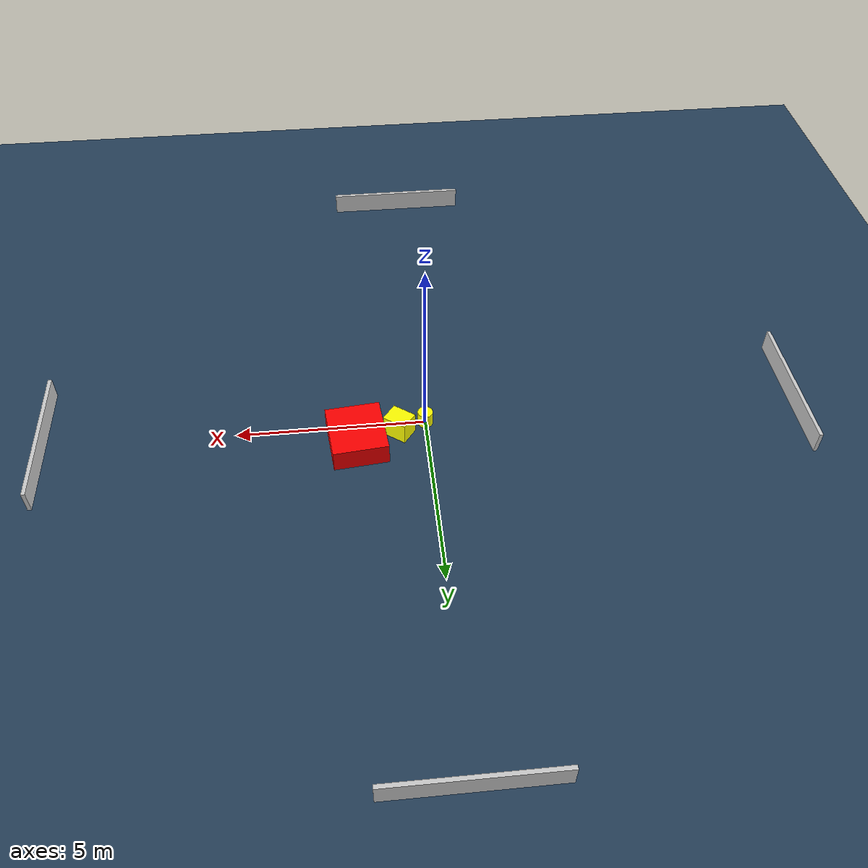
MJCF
<?xml version="1.0" ?>
<mujoco model="generated_environment">
  <option timestep="0.01" integrator="RK4" cone="elliptic"/>
  <default>
    <geom density="1"/>
  </default>
  <asset>
    <texture builtin="gradient" height="3072" name="skybox" rgb1="0.3 0.5 0.7" rgb2="0 0 0" type="skybox" width="512"/>
    <texture builtin="checker" height="300" name="groundplane" rgb1="0.2 0.3 0.4" rgb2="0.1 0.2 0.3" type="2d" width="300"/>
    <material name="groundplane" reflectance="0.2" texrepeat="5 5" texture="groundplane"/>
  </asset>
  <worldbody>
    <light dir="0 0 -1" directional="true" pos="0 0 1.5"/>
    <geom condim="3" friction="0.5 0.005 0.001" material="groundplane" name="floor" pos="0 0 0" size="0 0 0.05" type="plane"/>
    <body name="walls">
      <geom name="wall_1" condim="4" pos="-10.0 0.0 0.3" rgba="0.800000011920929 0.800000011920929 0.800000011920929 1.0" size="0.05 2.0 0.3" type="box"/>
      <geom name="wall_2" condim="4" pos="10.0 0.0 0.3" rgba="0.800000011920929 0.800000011920929 0.800000011920929 1.0" size="0.05 2.0 0.3" type="box"/>
      <geom name="wall_3" condim="4" pos="0.0 -10.0 0.3" rgba="0.800000011920929 0.800000011920929 0.800000011920929 1.0" size="2.0 0.05 0.3" type="box"/>
      <geom name="wall_4" condim="4" pos="0.0 10.0 0.3" rgba="0.800000011920929 0.800000011920929 0.800000011920929 1.0" size="2.0 0.05 0.3" type="box"/>
    </body>
    <body name="robot">
      <joint name="joint_x" type="slide" pos="0 0 0" axis="1 0 0"/>
      <joint name="joint_y" type="slide" pos="0 0 0" axis="0 1 0"/>
      <geom name="robot" type="cylinder" pos="0.0 0.0 0.2" size="0.2 0.2 0.0" mass="5.0" friction="1.0 0.005 0.0001" condim="4" rgba="1.0 1.0 0.0 1.0"/>
    </body>
    <body name="obstacle_1_movable">
      <geom name="obstacle_1_movable" condim="4" pos="0.710353791844801 0.2807344748478272 0.3" euler="0 0 233.2652646899694" friction="0.0 0.005 0.001" rgba="1.0 1.0 0.0 1.0" size="0.2619406341184574 0.32549060268925867 0.3" type="box" mass="0.1"/>
      <joint type="free"/>
    </body>
    <body name="obstacle_2_static">
      <geom name="obstacle_2_static" condim="4" pos="1.8416546462875885 0.5777984161332557 0.3" euler="0 0 185.80079844626624" friction="0.0 0.005 0.001" rgba="1.0 0.0 0.0 1.0" size="0.7231824946604795 0.7964285222242811 0.3" type="box"/>
    </body>
  </worldbody>
  <actuator>
    <motor name="actuator_x" joint="joint_x" gear="1" ctrlrange="-1 1"/>
    <motor name="actuator_y" joint="joint_y" gear="1" ctrlrange="-1 1"/>
  </actuator>
</mujoco>
